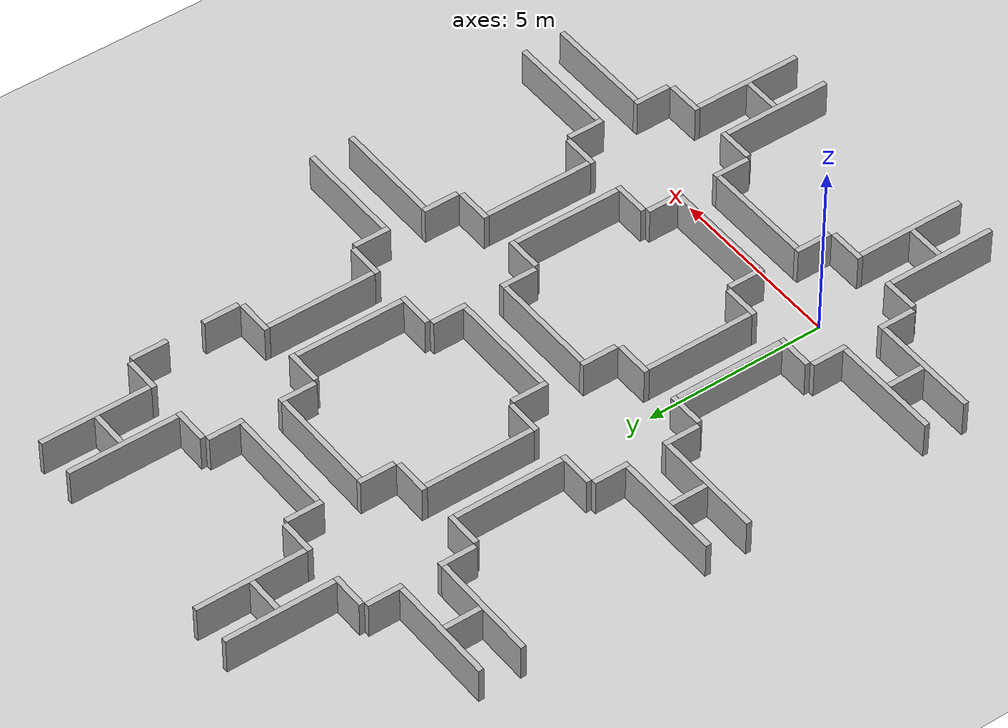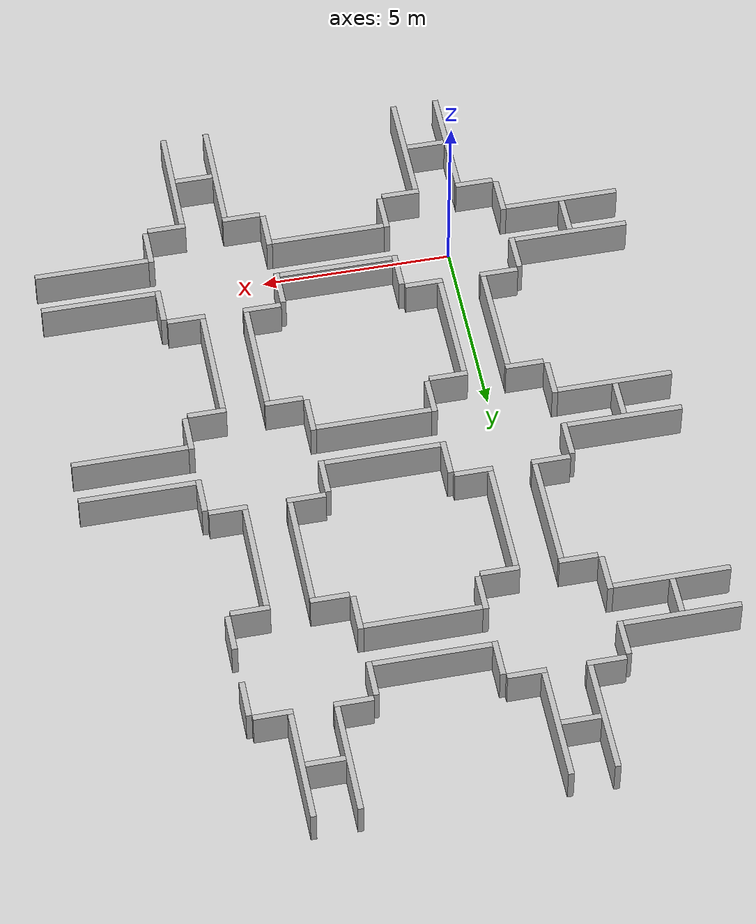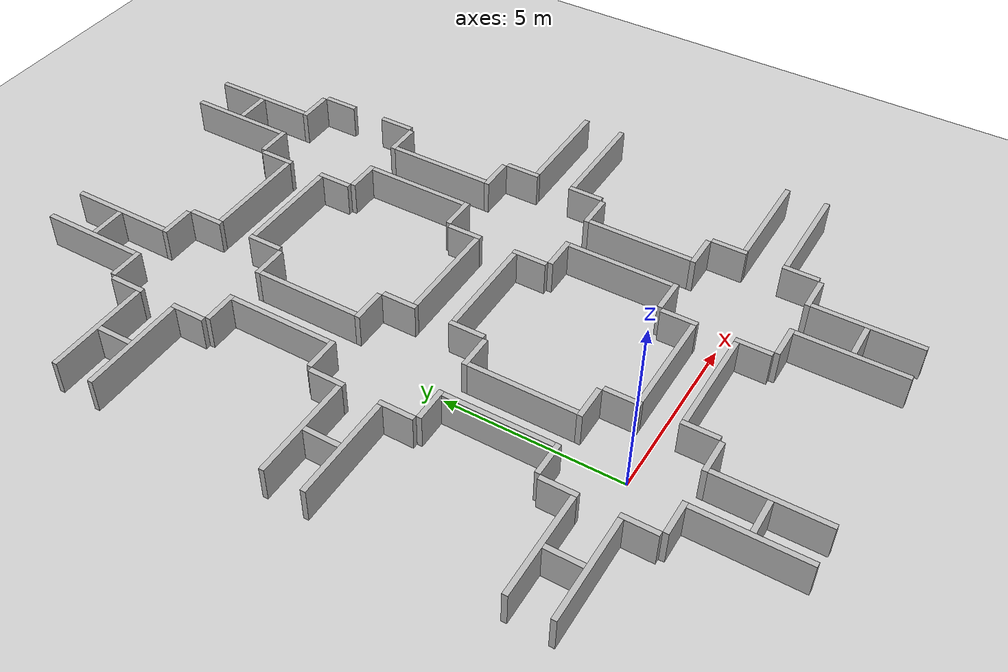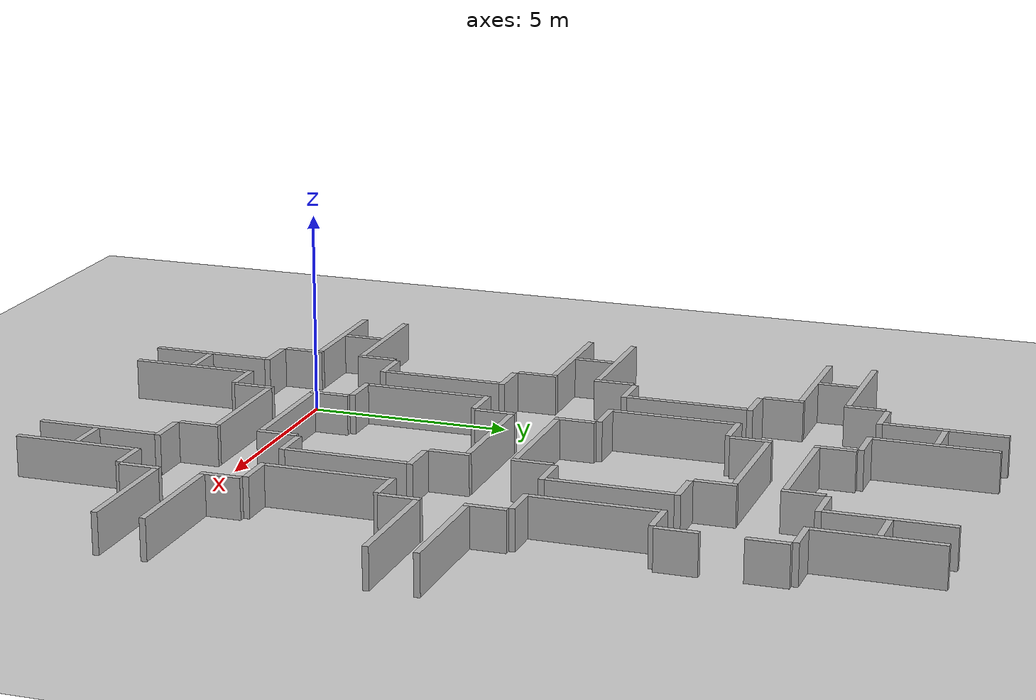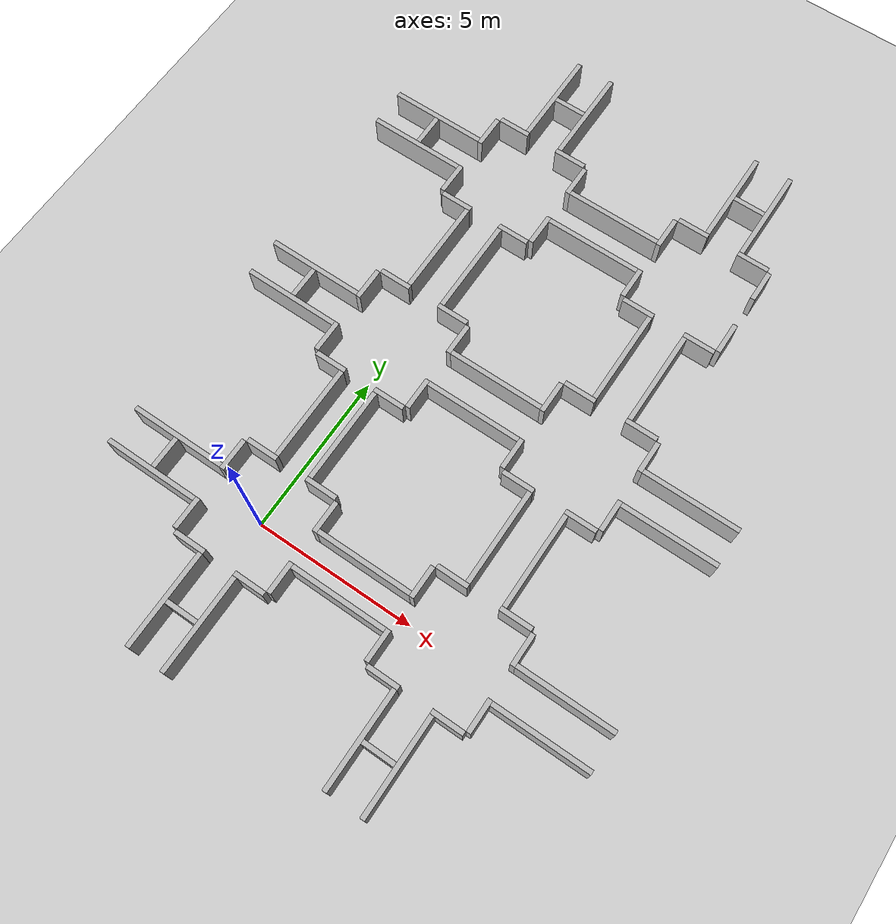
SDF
<sdf version="1.4">
 <world name="scenario 1">
  <include><uri>model://ground_plane</uri></include>
  <include><uri>model://sun</uri></include>
  <model name="roomWall_173">
   <pose>-1 -1.575 0 0 0 0</pose>
   <static>true</static>
   <link name="box">
    <pose>0 0 0.5 0 0 1.5707963267948966</pose>
    <collision name="collision"><geometry><box><size>0.15 1 1</size></box></geometry></collision>
    <visual name="visual"><geometry><box><size>0.15 1 1</size></box></geometry></visual>
   </link>
  </model>
  <model name="roomWall_174">
   <pose>1 -1.575 0 0 0 0</pose>
   <static>true</static>
   <link name="box">
    <pose>0 0 0.5 0 0 1.5707963267948966</pose>
    <collision name="collision"><geometry><box><size>0.15 1 1</size></box></geometry></collision>
    <visual name="visual"><geometry><box><size>0.15 1 1</size></box></geometry></visual>
   </link>
  </model>
  <model name="roomWall_175">
   <pose>1.575 -1 0 0 0 0</pose>
   <static>true</static>
   <link name="box">
    <pose>0 0 0.5 0 0 0</pose>
    <collision name="collision"><geometry><box><size>0.15 1 1</size></box></geometry></collision>
    <visual name="visual"><geometry><box><size>0.15 1 1</size></box></geometry></visual>
   </link>
  </model>
  <model name="roomWall_176">
   <pose>1.575 1 0 0 0 0</pose>
   <static>true</static>
   <link name="box">
    <pose>0 0 0.5 0 0 0</pose>
    <collision name="collision"><geometry><box><size>0.15 1 1</size></box></geometry></collision>
    <visual name="visual"><geometry><box><size>0.15 1 1</size></box></geometry></visual>
   </link>
  </model>
  <model name="roomWall_177">
   <pose>1 1.575 0 0 0 0</pose>
   <static>true</static>
   <link name="box">
    <pose>0 0 0.5 0 0 1.5707963267948966</pose>
    <collision name="collision"><geometry><box><size>0.15 1 1</size></box></geometry></collision>
    <visual name="visual"><geometry><box><size>0.15 1 1</size></box></geometry></visual>
   </link>
  </model>
  <model name="roomWall_178">
   <pose>-1 1.575 0 0 0 0</pose>
   <static>true</static>
   <link name="box">
    <pose>0 0 0.5 0 0 1.5707963267948966</pose>
    <collision name="collision"><geometry><box><size>0.15 1 1</size></box></geometry></collision>
    <visual name="visual"><geometry><box><size>0.15 1 1</size></box></geometry></visual>
   </link>
  </model>
  <model name="roomWall_179">
   <pose>-1.575 1 0 0 0 0</pose>
   <static>true</static>
   <link name="box">
    <pose>0 0 0.5 0 0 0</pose>
    <collision name="collision"><geometry><box><size>0.15 1 1</size></box></geometry></collision>
    <visual name="visual"><geometry><box><size>0.15 1 1</size></box></geometry></visual>
   </link>
  </model>
  <model name="roomWall_180">
   <pose>-1.575 -1 0 0 0 0</pose>
   <static>true</static>
   <link name="box">
    <pose>0 0 0.5 0 0 0</pose>
    <collision name="collision"><geometry><box><size>0.15 1 1</size></box></geometry></collision>
    <visual name="visual"><geometry><box><size>0.15 1 1</size></box></geometry></visual>
   </link>
  </model>
  <model name="roomWall_181">
   <pose>-1 4.725 0 0 0 0</pose>
   <static>true</static>
   <link name="box">
    <pose>0 0 0.5 0 0 1.5707963267948966</pose>
    <collision name="collision"><geometry><box><size>0.15 1 1</size></box></geometry></collision>
    <visual name="visual"><geometry><box><size>0.15 1 1</size></box></geometry></visual>
   </link>
  </model>
  <model name="roomWall_182">
   <pose>1 4.725 0 0 0 0</pose>
   <static>true</static>
   <link name="box">
    <pose>0 0 0.5 0 0 1.5707963267948966</pose>
    <collision name="collision"><geometry><box><size>0.15 1 1</size></box></geometry></collision>
    <visual name="visual"><geometry><box><size>0.15 1 1</size></box></geometry></visual>
   </link>
  </model>
  <model name="roomWall_183">
   <pose>1.575 5.3 0 0 0 0</pose>
   <static>true</static>
   <link name="box">
    <pose>0 0 0.5 0 0 0</pose>
    <collision name="collision"><geometry><box><size>0.15 1 1</size></box></geometry></collision>
    <visual name="visual"><geometry><box><size>0.15 1 1</size></box></geometry></visual>
   </link>
  </model>
  <model name="roomWall_184">
   <pose>1.575 7.3 0 0 0 0</pose>
   <static>true</static>
   <link name="box">
    <pose>0 0 0.5 0 0 0</pose>
    <collision name="collision"><geometry><box><size>0.15 1 1</size></box></geometry></collision>
    <visual name="visual"><geometry><box><size>0.15 1 1</size></box></geometry></visual>
   </link>
  </model>
  <model name="roomWall_185">
   <pose>1 7.875 0 0 0 0</pose>
   <static>true</static>
   <link name="box">
    <pose>0 0 0.5 0 0 1.5707963267948966</pose>
    <collision name="collision"><geometry><box><size>0.15 1 1</size></box></geometry></collision>
    <visual name="visual"><geometry><box><size>0.15 1 1</size></box></geometry></visual>
   </link>
  </model>
  <model name="roomWall_186">
   <pose>-1 7.875 0 0 0 0</pose>
   <static>true</static>
   <link name="box">
    <pose>0 0 0.5 0 0 1.5707963267948966</pose>
    <collision name="collision"><geometry><box><size>0.15 1 1</size></box></geometry></collision>
    <visual name="visual"><geometry><box><size>0.15 1 1</size></box></geometry></visual>
   </link>
  </model>
  <model name="roomWall_187">
   <pose>-1.575 7.3 0 0 0 0</pose>
   <static>true</static>
   <link name="box">
    <pose>0 0 0.5 0 0 0</pose>
    <collision name="collision"><geometry><box><size>0.15 1 1</size></box></geometry></collision>
    <visual name="visual"><geometry><box><size>0.15 1 1</size></box></geometry></visual>
   </link>
  </model>
  <model name="roomWall_188">
   <pose>-1.575 5.3 0 0 0 0</pose>
   <static>true</static>
   <link name="box">
    <pose>0 0 0.5 0 0 0</pose>
    <collision name="collision"><geometry><box><size>0.15 1 1</size></box></geometry></collision>
    <visual name="visual"><geometry><box><size>0.15 1 1</size></box></geometry></visual>
   </link>
  </model>
  <model name="roomWall_189">
   <pose>-1 11.025 0 0 0 0</pose>
   <static>true</static>
   <link name="box">
    <pose>0 0 0.5 0 0 1.5707963267948966</pose>
    <collision name="collision"><geometry><box><size>0.15 1 1</size></box></geometry></collision>
    <visual name="visual"><geometry><box><size>0.15 1 1</size></box></geometry></visual>
   </link>
  </model>
  <model name="roomWall_190">
   <pose>1 11.025 0 0 0 0</pose>
   <static>true</static>
   <link name="box">
    <pose>0 0 0.5 0 0 1.5707963267948966</pose>
    <collision name="collision"><geometry><box><size>0.15 1 1</size></box></geometry></collision>
    <visual name="visual"><geometry><box><size>0.15 1 1</size></box></geometry></visual>
   </link>
  </model>
  <model name="roomWall_191">
   <pose>1.575 11.6 0 0 0 0</pose>
   <static>true</static>
   <link name="box">
    <pose>0 0 0.5 0 0 0</pose>
    <collision name="collision"><geometry><box><size>0.15 1 1</size></box></geometry></collision>
    <visual name="visual"><geometry><box><size>0.15 1 1</size></box></geometry></visual>
   </link>
  </model>
  <model name="roomWall_192">
   <pose>1.575 13.6 0 0 0 0</pose>
   <static>true</static>
   <link name="box">
    <pose>0 0 0.5 0 0 0</pose>
    <collision name="collision"><geometry><box><size>0.15 1 1</size></box></geometry></collision>
    <visual name="visual"><geometry><box><size>0.15 1 1</size></box></geometry></visual>
   </link>
  </model>
  <model name="roomWall_193">
   <pose>1 14.174999999999999 0 0 0 0</pose>
   <static>true</static>
   <link name="box">
    <pose>0 0 0.5 0 0 1.5707963267948966</pose>
    <collision name="collision"><geometry><box><size>0.15 1 1</size></box></geometry></collision>
    <visual name="visual"><geometry><box><size>0.15 1 1</size></box></geometry></visual>
   </link>
  </model>
  <model name="roomWall_194">
   <pose>-1 14.174999999999999 0 0 0 0</pose>
   <static>true</static>
   <link name="box">
    <pose>0 0 0.5 0 0 1.5707963267948966</pose>
    <collision name="collision"><geometry><box><size>0.15 1 1</size></box></geometry></collision>
    <visual name="visual"><geometry><box><size>0.15 1 1</size></box></geometry></visual>
   </link>
  </model>
  <model name="roomWall_195">
   <pose>-1.575 13.6 0 0 0 0</pose>
   <static>true</static>
   <link name="box">
    <pose>0 0 0.5 0 0 0</pose>
    <collision name="collision"><geometry><box><size>0.15 1 1</size></box></geometry></collision>
    <visual name="visual"><geometry><box><size>0.15 1 1</size></box></geometry></visual>
   </link>
  </model>
  <model name="roomWall_196">
   <pose>-1.575 11.6 0 0 0 0</pose>
   <static>true</static>
   <link name="box">
    <pose>0 0 0.5 0 0 0</pose>
    <collision name="collision"><geometry><box><size>0.15 1 1</size></box></geometry></collision>
    <visual name="visual"><geometry><box><size>0.15 1 1</size></box></geometry></visual>
   </link>
  </model>
  <model name="roomWall_197">
   <pose>5.3 -1.575 0 0 0 0</pose>
   <static>true</static>
   <link name="box">
    <pose>0 0 0.5 0 0 1.5707963267948966</pose>
    <collision name="collision"><geometry><box><size>0.15 1 1</size></box></geometry></collision>
    <visual name="visual"><geometry><box><size>0.15 1 1</size></box></geometry></visual>
   </link>
  </model>
  <model name="roomWall_198">
   <pose>7.3 -1.575 0 0 0 0</pose>
   <static>true</static>
   <link name="box">
    <pose>0 0 0.5 0 0 1.5707963267948966</pose>
    <collision name="collision"><geometry><box><size>0.15 1 1</size></box></geometry></collision>
    <visual name="visual"><geometry><box><size>0.15 1 1</size></box></geometry></visual>
   </link>
  </model>
  <model name="roomWall_199">
   <pose>7.875 -1 0 0 0 0</pose>
   <static>true</static>
   <link name="box">
    <pose>0 0 0.5 0 0 0</pose>
    <collision name="collision"><geometry><box><size>0.15 1 1</size></box></geometry></collision>
    <visual name="visual"><geometry><box><size>0.15 1 1</size></box></geometry></visual>
   </link>
  </model>
  <model name="roomWall_200">
   <pose>7.875 1 0 0 0 0</pose>
   <static>true</static>
   <link name="box">
    <pose>0 0 0.5 0 0 0</pose>
    <collision name="collision"><geometry><box><size>0.15 1 1</size></box></geometry></collision>
    <visual name="visual"><geometry><box><size>0.15 1 1</size></box></geometry></visual>
   </link>
  </model>
  <model name="roomWall_201">
   <pose>7.3 1.575 0 0 0 0</pose>
   <static>true</static>
   <link name="box">
    <pose>0 0 0.5 0 0 1.5707963267948966</pose>
    <collision name="collision"><geometry><box><size>0.15 1 1</size></box></geometry></collision>
    <visual name="visual"><geometry><box><size>0.15 1 1</size></box></geometry></visual>
   </link>
  </model>
  <model name="roomWall_202">
   <pose>5.3 1.575 0 0 0 0</pose>
   <static>true</static>
   <link name="box">
    <pose>0 0 0.5 0 0 1.5707963267948966</pose>
    <collision name="collision"><geometry><box><size>0.15 1 1</size></box></geometry></collision>
    <visual name="visual"><geometry><box><size>0.15 1 1</size></box></geometry></visual>
   </link>
  </model>
  <model name="roomWall_203">
   <pose>4.725 1 0 0 0 0</pose>
   <static>true</static>
   <link name="box">
    <pose>0 0 0.5 0 0 0</pose>
    <collision name="collision"><geometry><box><size>0.15 1 1</size></box></geometry></collision>
    <visual name="visual"><geometry><box><size>0.15 1 1</size></box></geometry></visual>
   </link>
  </model>
  <model name="roomWall_204">
   <pose>4.725 -1 0 0 0 0</pose>
   <static>true</static>
   <link name="box">
    <pose>0 0 0.5 0 0 0</pose>
    <collision name="collision"><geometry><box><size>0.15 1 1</size></box></geometry></collision>
    <visual name="visual"><geometry><box><size>0.15 1 1</size></box></geometry></visual>
   </link>
  </model>
  <model name="roomWall_205">
   <pose>5.3 4.725 0 0 0 0</pose>
   <static>true</static>
   <link name="box">
    <pose>0 0 0.5 0 0 1.5707963267948966</pose>
    <collision name="collision"><geometry><box><size>0.15 1 1</size></box></geometry></collision>
    <visual name="visual"><geometry><box><size>0.15 1 1</size></box></geometry></visual>
   </link>
  </model>
  <model name="roomWall_206">
   <pose>7.3 4.725 0 0 0 0</pose>
   <static>true</static>
   <link name="box">
    <pose>0 0 0.5 0 0 1.5707963267948966</pose>
    <collision name="collision"><geometry><box><size>0.15 1 1</size></box></geometry></collision>
    <visual name="visual"><geometry><box><size>0.15 1 1</size></box></geometry></visual>
   </link>
  </model>
  <model name="roomWall_207">
   <pose>7.875 5.3 0 0 0 0</pose>
   <static>true</static>
   <link name="box">
    <pose>0 0 0.5 0 0 0</pose>
    <collision name="collision"><geometry><box><size>0.15 1 1</size></box></geometry></collision>
    <visual name="visual"><geometry><box><size>0.15 1 1</size></box></geometry></visual>
   </link>
  </model>
  <model name="roomWall_208">
   <pose>7.875 7.3 0 0 0 0</pose>
   <static>true</static>
   <link name="box">
    <pose>0 0 0.5 0 0 0</pose>
    <collision name="collision"><geometry><box><size>0.15 1 1</size></box></geometry></collision>
    <visual name="visual"><geometry><box><size>0.15 1 1</size></box></geometry></visual>
   </link>
  </model>
  <model name="roomWall_209">
   <pose>7.3 7.875 0 0 0 0</pose>
   <static>true</static>
   <link name="box">
    <pose>0 0 0.5 0 0 1.5707963267948966</pose>
    <collision name="collision"><geometry><box><size>0.15 1 1</size></box></geometry></collision>
    <visual name="visual"><geometry><box><size>0.15 1 1</size></box></geometry></visual>
   </link>
  </model>
  <model name="roomWall_210">
   <pose>5.3 7.875 0 0 0 0</pose>
   <static>true</static>
   <link name="box">
    <pose>0 0 0.5 0 0 1.5707963267948966</pose>
    <collision name="collision"><geometry><box><size>0.15 1 1</size></box></geometry></collision>
    <visual name="visual"><geometry><box><size>0.15 1 1</size></box></geometry></visual>
   </link>
  </model>
  <model name="roomWall_211">
   <pose>4.725 7.3 0 0 0 0</pose>
   <static>true</static>
   <link name="box">
    <pose>0 0 0.5 0 0 0</pose>
    <collision name="collision"><geometry><box><size>0.15 1 1</size></box></geometry></collision>
    <visual name="visual"><geometry><box><size>0.15 1 1</size></box></geometry></visual>
   </link>
  </model>
  <model name="roomWall_212">
   <pose>4.725 5.3 0 0 0 0</pose>
   <static>true</static>
   <link name="box">
    <pose>0 0 0.5 0 0 0</pose>
    <collision name="collision"><geometry><box><size>0.15 1 1</size></box></geometry></collision>
    <visual name="visual"><geometry><box><size>0.15 1 1</size></box></geometry></visual>
   </link>
  </model>
  <model name="roomWall_213">
   <pose>5.3 11.025 0 0 0 0</pose>
   <static>true</static>
   <link name="box">
    <pose>0 0 0.5 0 0 1.5707963267948966</pose>
    <collision name="collision"><geometry><box><size>0.15 1 1</size></box></geometry></collision>
    <visual name="visual"><geometry><box><size>0.15 1 1</size></box></geometry></visual>
   </link>
  </model>
  <model name="roomWall_214">
   <pose>7.3 11.025 0 0 0 0</pose>
   <static>true</static>
   <link name="box">
    <pose>0 0 0.5 0 0 1.5707963267948966</pose>
    <collision name="collision"><geometry><box><size>0.15 1 1</size></box></geometry></collision>
    <visual name="visual"><geometry><box><size>0.15 1 1</size></box></geometry></visual>
   </link>
  </model>
  <model name="roomWall_215">
   <pose>7.875 11.6 0 0 0 0</pose>
   <static>true</static>
   <link name="box">
    <pose>0 0 0.5 0 0 0</pose>
    <collision name="collision"><geometry><box><size>0.15 1 1</size></box></geometry></collision>
    <visual name="visual"><geometry><box><size>0.15 1 1</size></box></geometry></visual>
   </link>
  </model>
  <model name="roomWall_216">
   <pose>7.875 13.6 0 0 0 0</pose>
   <static>true</static>
   <link name="box">
    <pose>0 0 0.5 0 0 0</pose>
    <collision name="collision"><geometry><box><size>0.15 1 1</size></box></geometry></collision>
    <visual name="visual"><geometry><box><size>0.15 1 1</size></box></geometry></visual>
   </link>
  </model>
  <model name="roomWall_217">
   <pose>7.3 14.174999999999999 0 0 0 0</pose>
   <static>true</static>
   <link name="box">
    <pose>0 0 0.5 0 0 1.5707963267948966</pose>
    <collision name="collision"><geometry><box><size>0.15 1 1</size></box></geometry></collision>
    <visual name="visual"><geometry><box><size>0.15 1 1</size></box></geometry></visual>
   </link>
  </model>
  <model name="roomWall_218">
   <pose>5.3 14.174999999999999 0 0 0 0</pose>
   <static>true</static>
   <link name="box">
    <pose>0 0 0.5 0 0 1.5707963267948966</pose>
    <collision name="collision"><geometry><box><size>0.15 1 1</size></box></geometry></collision>
    <visual name="visual"><geometry><box><size>0.15 1 1</size></box></geometry></visual>
   </link>
  </model>
  <model name="roomWall_219">
   <pose>4.725 13.6 0 0 0 0</pose>
   <static>true</static>
   <link name="box">
    <pose>0 0 0.5 0 0 0</pose>
    <collision name="collision"><geometry><box><size>0.15 1 1</size></box></geometry></collision>
    <visual name="visual"><geometry><box><size>0.15 1 1</size></box></geometry></visual>
   </link>
  </model>
  <model name="roomWall_220">
   <pose>4.725 11.6 0 0 0 0</pose>
   <static>true</static>
   <link name="box">
    <pose>0 0 0.5 0 0 0</pose>
    <collision name="collision"><geometry><box><size>0.15 1 1</size></box></geometry></collision>
    <visual name="visual"><geometry><box><size>0.15 1 1</size></box></geometry></visual>
   </link>
  </model>
  <model name="pathWayWall_269">
   <pose>3.15 -0.575 0 0 0 0</pose>
   <static>true</static>
   <link name="box">
    <pose>0 0 0.5 0 0 1.5707963267948966</pose>
    <collision name="collision"><geometry><box><size>0.15 3 1</size></box></geometry></collision>
    <visual name="visual"><geometry><box><size>0.15 3 1</size></box></geometry></visual>
   </link>
  </model>
  <model name="pathWayWall_270">
   <pose>3.15 0.575 0 0 0 0</pose>
   <static>true</static>
   <link name="box">
    <pose>0 0 0.5 0 0 1.5707963267948966</pose>
    <collision name="collision"><geometry><box><size>0.15 3 1</size></box></geometry></collision>
    <visual name="visual"><geometry><box><size>0.15 3 1</size></box></geometry></visual>
   </link>
  </model>
  <model name="pathWayWall_271">
   <pose>0.575 3.15 0 0 0 0</pose>
   <static>true</static>
   <link name="box">
    <pose>0 0 0.5 0 0 0</pose>
    <collision name="collision"><geometry><box><size>0.15 3 1</size></box></geometry></collision>
    <visual name="visual"><geometry><box><size>0.15 3 1</size></box></geometry></visual>
   </link>
  </model>
  <model name="pathWayWall_272">
   <pose>-0.575 3.15 0 0 0 0</pose>
   <static>true</static>
   <link name="box">
    <pose>0 0 0.5 0 0 0</pose>
    <collision name="collision"><geometry><box><size>0.15 3 1</size></box></geometry></collision>
    <visual name="visual"><geometry><box><size>0.15 3 1</size></box></geometry></visual>
   </link>
  </model>
  <model name="pathWayWall_273">
   <pose>-3.15 0.575 0 0 0 0</pose>
   <static>true</static>
   <link name="box">
    <pose>0 0 0.5 0 0 1.5707963267948966</pose>
    <collision name="collision"><geometry><box><size>0.15 3 1</size></box></geometry></collision>
    <visual name="visual"><geometry><box><size>0.15 3 1</size></box></geometry></visual>
   </link>
  </model>
  <model name="pathWayWall_274">
   <pose>-3.15 -0.575 0 0 0 0</pose>
   <static>true</static>
   <link name="box">
    <pose>0 0 0.5 0 0 1.5707963267948966</pose>
    <collision name="collision"><geometry><box><size>0.15 3 1</size></box></geometry></collision>
    <visual name="visual"><geometry><box><size>0.15 3 1</size></box></geometry></visual>
   </link>
  </model>
  <model name="pathWayWall_275">
   <pose>-0.575 -3.15 0 0 0 0</pose>
   <static>true</static>
   <link name="box">
    <pose>0 0 0.5 0 0 0</pose>
    <collision name="collision"><geometry><box><size>0.15 3 1</size></box></geometry></collision>
    <visual name="visual"><geometry><box><size>0.15 3 1</size></box></geometry></visual>
   </link>
  </model>
  <model name="pathWayWall_276">
   <pose>0.575 -3.15 0 0 0 0</pose>
   <static>true</static>
   <link name="box">
    <pose>0 0 0.5 0 0 0</pose>
    <collision name="collision"><geometry><box><size>0.15 3 1</size></box></geometry></collision>
    <visual name="visual"><geometry><box><size>0.15 3 1</size></box></geometry></visual>
   </link>
  </model>
  <model name="pathWayWall_277">
   <pose>3.15 5.725 0 0 0 0</pose>
   <static>true</static>
   <link name="box">
    <pose>0 0 0.5 0 0 1.5707963267948966</pose>
    <collision name="collision"><geometry><box><size>0.15 3 1</size></box></geometry></collision>
    <visual name="visual"><geometry><box><size>0.15 3 1</size></box></geometry></visual>
   </link>
  </model>
  <model name="pathWayWall_278">
   <pose>3.15 6.875 0 0 0 0</pose>
   <static>true</static>
   <link name="box">
    <pose>0 0 0.5 0 0 1.5707963267948966</pose>
    <collision name="collision"><geometry><box><size>0.15 3 1</size></box></geometry></collision>
    <visual name="visual"><geometry><box><size>0.15 3 1</size></box></geometry></visual>
   </link>
  </model>
  <model name="pathWayWall_279">
   <pose>0.575 9.45 0 0 0 0</pose>
   <static>true</static>
   <link name="box">
    <pose>0 0 0.5 0 0 0</pose>
    <collision name="collision"><geometry><box><size>0.15 3 1</size></box></geometry></collision>
    <visual name="visual"><geometry><box><size>0.15 3 1</size></box></geometry></visual>
   </link>
  </model>
  <model name="pathWayWall_280">
   <pose>-0.575 9.45 0 0 0 0</pose>
   <static>true</static>
   <link name="box">
    <pose>0 0 0.5 0 0 0</pose>
    <collision name="collision"><geometry><box><size>0.15 3 1</size></box></geometry></collision>
    <visual name="visual"><geometry><box><size>0.15 3 1</size></box></geometry></visual>
   </link>
  </model>
  <model name="pathWayWall_281">
   <pose>-3.15 6.875 0 0 0 0</pose>
   <static>true</static>
   <link name="box">
    <pose>0 0 0.5 0 0 1.5707963267948966</pose>
    <collision name="collision"><geometry><box><size>0.15 3 1</size></box></geometry></collision>
    <visual name="visual"><geometry><box><size>0.15 3 1</size></box></geometry></visual>
   </link>
  </model>
  <model name="pathWayWall_282">
   <pose>-3.15 5.725 0 0 0 0</pose>
   <static>true</static>
   <link name="box">
    <pose>0 0 0.5 0 0 1.5707963267948966</pose>
    <collision name="collision"><geometry><box><size>0.15 3 1</size></box></geometry></collision>
    <visual name="visual"><geometry><box><size>0.15 3 1</size></box></geometry></visual>
   </link>
  </model>
  <model name="pathWayWall_283">
   <pose>3.15 12.025 0 0 0 0</pose>
   <static>true</static>
   <link name="box">
    <pose>0 0 0.5 0 0 1.5707963267948966</pose>
    <collision name="collision"><geometry><box><size>0.15 3 1</size></box></geometry></collision>
    <visual name="visual"><geometry><box><size>0.15 3 1</size></box></geometry></visual>
   </link>
  </model>
  <model name="pathWayWall_284">
   <pose>3.15 13.174999999999999 0 0 0 0</pose>
   <static>true</static>
   <link name="box">
    <pose>0 0 0.5 0 0 1.5707963267948966</pose>
    <collision name="collision"><geometry><box><size>0.15 3 1</size></box></geometry></collision>
    <visual name="visual"><geometry><box><size>0.15 3 1</size></box></geometry></visual>
   </link>
  </model>
  <model name="pathWayWall_285">
   <pose>0.575 15.75 0 0 0 0</pose>
   <static>true</static>
   <link name="box">
    <pose>0 0 0.5 0 0 0</pose>
    <collision name="collision"><geometry><box><size>0.15 3 1</size></box></geometry></collision>
    <visual name="visual"><geometry><box><size>0.15 3 1</size></box></geometry></visual>
   </link>
  </model>
  <model name="pathWayWall_286">
   <pose>-0.575 15.75 0 0 0 0</pose>
   <static>true</static>
   <link name="box">
    <pose>0 0 0.5 0 0 0</pose>
    <collision name="collision"><geometry><box><size>0.15 3 1</size></box></geometry></collision>
    <visual name="visual"><geometry><box><size>0.15 3 1</size></box></geometry></visual>
   </link>
  </model>
  <model name="pathWayWall_287">
   <pose>-3.15 13.174999999999999 0 0 0 0</pose>
   <static>true</static>
   <link name="box">
    <pose>0 0 0.5 0 0 1.5707963267948966</pose>
    <collision name="collision"><geometry><box><size>0.15 3 1</size></box></geometry></collision>
    <visual name="visual"><geometry><box><size>0.15 3 1</size></box></geometry></visual>
   </link>
  </model>
  <model name="pathWayWall_288">
   <pose>-3.15 12.025 0 0 0 0</pose>
   <static>true</static>
   <link name="box">
    <pose>0 0 0.5 0 0 1.5707963267948966</pose>
    <collision name="collision"><geometry><box><size>0.15 3 1</size></box></geometry></collision>
    <visual name="visual"><geometry><box><size>0.15 3 1</size></box></geometry></visual>
   </link>
  </model>
  <model name="pathWayWall_289">
   <pose>9.45 -0.575 0 0 0 0</pose>
   <static>true</static>
   <link name="box">
    <pose>0 0 0.5 0 0 1.5707963267948966</pose>
    <collision name="collision"><geometry><box><size>0.15 3 1</size></box></geometry></collision>
    <visual name="visual"><geometry><box><size>0.15 3 1</size></box></geometry></visual>
   </link>
  </model>
  <model name="pathWayWall_290">
   <pose>9.45 0.575 0 0 0 0</pose>
   <static>true</static>
   <link name="box">
    <pose>0 0 0.5 0 0 1.5707963267948966</pose>
    <collision name="collision"><geometry><box><size>0.15 3 1</size></box></geometry></collision>
    <visual name="visual"><geometry><box><size>0.15 3 1</size></box></geometry></visual>
   </link>
  </model>
  <model name="pathWayWall_291">
   <pose>6.875 3.15 0 0 0 0</pose>
   <static>true</static>
   <link name="box">
    <pose>0 0 0.5 0 0 0</pose>
    <collision name="collision"><geometry><box><size>0.15 3 1</size></box></geometry></collision>
    <visual name="visual"><geometry><box><size>0.15 3 1</size></box></geometry></visual>
   </link>
  </model>
  <model name="pathWayWall_292">
   <pose>5.725 3.15 0 0 0 0</pose>
   <static>true</static>
   <link name="box">
    <pose>0 0 0.5 0 0 0</pose>
    <collision name="collision"><geometry><box><size>0.15 3 1</size></box></geometry></collision>
    <visual name="visual"><geometry><box><size>0.15 3 1</size></box></geometry></visual>
   </link>
  </model>
  <model name="pathWayWall_293">
   <pose>5.725 -3.15 0 0 0 0</pose>
   <static>true</static>
   <link name="box">
    <pose>0 0 0.5 0 0 0</pose>
    <collision name="collision"><geometry><box><size>0.15 3 1</size></box></geometry></collision>
    <visual name="visual"><geometry><box><size>0.15 3 1</size></box></geometry></visual>
   </link>
  </model>
  <model name="pathWayWall_294">
   <pose>6.875 -3.15 0 0 0 0</pose>
   <static>true</static>
   <link name="box">
    <pose>0 0 0.5 0 0 0</pose>
    <collision name="collision"><geometry><box><size>0.15 3 1</size></box></geometry></collision>
    <visual name="visual"><geometry><box><size>0.15 3 1</size></box></geometry></visual>
   </link>
  </model>
  <model name="pathWayWall_295">
   <pose>9.45 5.725 0 0 0 0</pose>
   <static>true</static>
   <link name="box">
    <pose>0 0 0.5 0 0 1.5707963267948966</pose>
    <collision name="collision"><geometry><box><size>0.15 3 1</size></box></geometry></collision>
    <visual name="visual"><geometry><box><size>0.15 3 1</size></box></geometry></visual>
   </link>
  </model>
  <model name="pathWayWall_296">
   <pose>9.45 6.875 0 0 0 0</pose>
   <static>true</static>
   <link name="box">
    <pose>0 0 0.5 0 0 1.5707963267948966</pose>
    <collision name="collision"><geometry><box><size>0.15 3 1</size></box></geometry></collision>
    <visual name="visual"><geometry><box><size>0.15 3 1</size></box></geometry></visual>
   </link>
  </model>
  <model name="pathWayWall_297">
   <pose>6.875 9.45 0 0 0 0</pose>
   <static>true</static>
   <link name="box">
    <pose>0 0 0.5 0 0 0</pose>
    <collision name="collision"><geometry><box><size>0.15 3 1</size></box></geometry></collision>
    <visual name="visual"><geometry><box><size>0.15 3 1</size></box></geometry></visual>
   </link>
  </model>
  <model name="pathWayWall_298">
   <pose>5.725 9.45 0 0 0 0</pose>
   <static>true</static>
   <link name="box">
    <pose>0 0 0.5 0 0 0</pose>
    <collision name="collision"><geometry><box><size>0.15 3 1</size></box></geometry></collision>
    <visual name="visual"><geometry><box><size>0.15 3 1</size></box></geometry></visual>
   </link>
  </model>
  <model name="pathWayWall_301">
   <pose>6.875 15.75 0 0 0 0</pose>
   <static>true</static>
   <link name="box">
    <pose>0 0 0.5 0 0 0</pose>
    <collision name="collision"><geometry><box><size>0.15 3 1</size></box></geometry></collision>
    <visual name="visual"><geometry><box><size>0.15 3 1</size></box></geometry></visual>
   </link>
  </model>
  <model name="pathWayWall_302">
   <pose>5.725 15.75 0 0 0 0</pose>
   <static>true</static>
   <link name="box">
    <pose>0 0 0.5 0 0 0</pose>
    <collision name="collision"><geometry><box><size>0.15 3 1</size></box></geometry></collision>
    <visual name="visual"><geometry><box><size>0.15 3 1</size></box></geometry></visual>
   </link>
  </model>
  <model name="blockingWall_331">
   <pose>-3.15 0 0 0 0 0</pose>
   <static>true</static>
   <link name="box">
    <pose>0 0 0.5 0 0 0</pose>
    <collision name="collision"><geometry><box><size>0.15 1 1</size></box></geometry></collision>
    <visual name="visual"><geometry><box><size>0.15 1 1</size></box></geometry></visual>
   </link>
  </model>
  <model name="blockingWall_332">
   <pose>0 -3.15 0 0 0 0</pose>
   <static>true</static>
   <link name="box">
    <pose>0 0 0.5 0 0 1.5707963267948966</pose>
    <collision name="collision"><geometry><box><size>0.15 1 1</size></box></geometry></collision>
    <visual name="visual"><geometry><box><size>0.15 1 1</size></box></geometry></visual>
   </link>
  </model>
  <model name="blockingWall_333">
   <pose>-3.15 6.3 0 0 0 0</pose>
   <static>true</static>
   <link name="box">
    <pose>0 0 0.5 0 0 0</pose>
    <collision name="collision"><geometry><box><size>0.15 1 1</size></box></geometry></collision>
    <visual name="visual"><geometry><box><size>0.15 1 1</size></box></geometry></visual>
   </link>
  </model>
  <model name="blockingWall_334">
   <pose>-3.15 12.6 0 0 0 0</pose>
   <static>true</static>
   <link name="box">
    <pose>0 0 0.5 0 0 0</pose>
    <collision name="collision"><geometry><box><size>0.15 1 1</size></box></geometry></collision>
    <visual name="visual"><geometry><box><size>0.15 1 1</size></box></geometry></visual>
   </link>
  </model>
  <model name="blockingWall_335">
   <pose>0 15.75 0 0 0 0</pose>
   <static>true</static>
   <link name="box">
    <pose>0 0 0.5 0 0 1.5707963267948966</pose>
    <collision name="collision"><geometry><box><size>0.15 1 1</size></box></geometry></collision>
    <visual name="visual"><geometry><box><size>0.15 1 1</size></box></geometry></visual>
   </link>
  </model>
  <model name="blockingWall_336">
   <pose>6.3 -3.15 0 0 0 0</pose>
   <static>true</static>
   <link name="box">
    <pose>0 0 0.5 0 0 1.5707963267948966</pose>
    <collision name="collision"><geometry><box><size>0.15 1 1</size></box></geometry></collision>
    <visual name="visual"><geometry><box><size>0.15 1 1</size></box></geometry></visual>
   </link>
  </model>
  <model name="blockingWall_337">
   <pose>6.3 15.75 0 0 0 0</pose>
   <static>true</static>
   <link name="box">
    <pose>0 0 0.5 0 0 1.5707963267948966</pose>
    <collision name="collision"><geometry><box><size>0.15 1 1</size></box></geometry></collision>
    <visual name="visual"><geometry><box><size>0.15 1 1</size></box></geometry></visual>
   </link>
  </model>
 </world>
</sdf>
